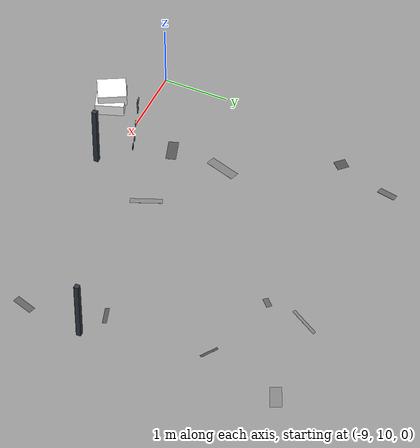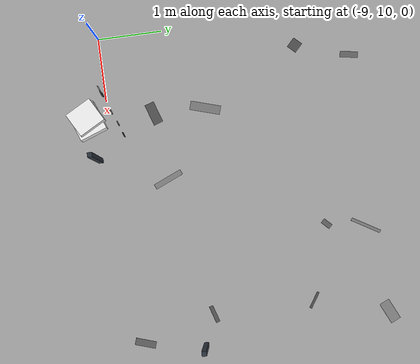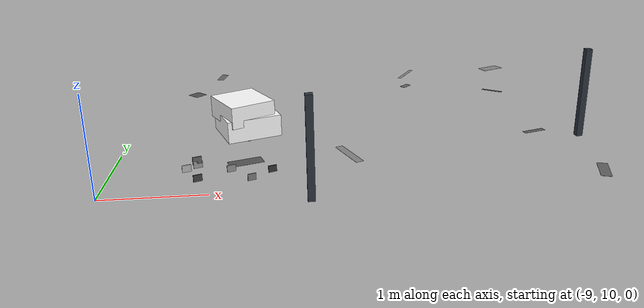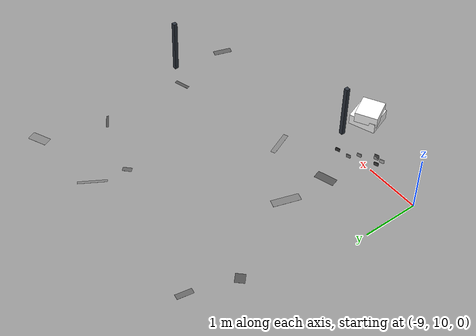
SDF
<sdf version="1.9">
 <world name="warehouse_irregular">
  <model name="concrete_patch_0">
   <static>true</static>
   <pose>-4.115097575578446 13.957961733746362 0.0006 0 0 -2.7177806267711726</pose>
   <link name="body">
    <visual name="surface">
     <geometry><box><size>0.3410374711611035 0.16528034942773398 0.001</size></box></geometry>
     <material>
      <ambient>0.5230129829485876 0.5230129829485876 0.5230129829485876 1</ambient>
      <diffuse>0.5230129829485876 0.5230129829485876 0.5230129829485876 1</diffuse>
     </material>
    </visual>
   </link>
  </model>
  <model name="concrete_patch_6">
   <static>true</static>
   <pose>-7.708475909224955 10.715653862771592 0.0006 0 0 0.3110669065295735</pose>
   <link name="body">
    <visual name="surface">
     <geometry><box><size>0.35138165184556985 0.1514570237064501 0.001</size></box></geometry>
     <material>
      <ambient>0.3307612838558225 0.3307612838558225 0.3307612838558225 1</ambient>
      <diffuse>0.3307612838558225 0.3307612838558225 0.3307612838558225 1</diffuse>
     </material>
    </visual>
   </link>
  </model>
  <model name="concrete_patch_14">
   <static>true</static>
   <pose>-8.217430454813963 13.914036345789711 0.0006 0 0 1.3866274076039886</pose>
   <link name="body">
    <visual name="surface">
     <geometry><box><size>0.28196065937643805 0.09643512882500528 0.001</size></box></geometry>
     <material>
      <ambient>0.4007991366429039 0.4007991366429039 0.4007991366429039 1</ambient>
      <diffuse>0.4007991366429039 0.4007991366429039 0.4007991366429039 1</diffuse>
     </material>
    </visual>
   </link>
  </model>
  <model name="concrete_patch_68">
   <static>true</static>
   <pose>-4.153584049041132 10.114149254909826 0.0006 0 0 -1.8919738790545682</pose>
   <link name="body">
    <visual name="surface">
     <geometry><box><size>0.3245111337251562 0.10807116053508793 0.001</size></box></geometry>
     <material>
      <ambient>0.38049309773484763 0.38049309773484763 0.38049309773484763 1</ambient>
      <diffuse>0.38049309773484763 0.38049309773484763 0.38049309773484763 1</diffuse>
     </material>
    </visual>
   </link>
  </model>
  <model name="concrete_patch_77">
   <static>true</static>
   <pose>-4.448641377197465 12.81350816669357 0.0006 0 0 2.551776843549339</pose>
   <link name="body">
    <visual name="surface">
     <geometry><box><size>0.27447990784818893 0.039546712375569865 0.001</size></box></geometry>
     <material>
      <ambient>0.3039209267187395 0.3039209267187395 0.3039209267187395 1</ambient>
      <diffuse>0.3039209267187395 0.3039209267187395 0.3039209267187395 1</diffuse>
     </material>
    </visual>
   </link>
  </model>
  <model name="concrete_patch_87">
   <static>true</static>
   <pose>-4.448880955811871 11.23657882567057 0.0006 0 0 -2.842829749918744</pose>
   <link name="body">
    <visual name="surface">
     <geometry><box><size>0.27339606438976305 0.06275885075314111 0.001</size></box></geometry>
     <material>
      <ambient>0.3374122956000345 0.3374122956000345 0.3374122956000345 1</ambient>
      <diffuse>0.3374122956000345 0.3374122956000345 0.3374122956000345 1</diffuse>
     </material>
    </visual>
   </link>
  </model>
  <model name="concrete_patch_126">
   <static>true</static>
   <pose>-7.68730106359679 11.535405056530152 0.0006 0 0 -1.876260584281576</pose>
   <link name="body">
    <visual name="surface">
     <geometry><box><size>0.48209028799979964 0.14102443216071728 0.001</size></box></geometry>
     <material>
      <ambient>0.4964284691885087 0.4964284691885087 0.4964284691885087 1</ambient>
      <diffuse>0.4964284691885087 0.4964284691885087 0.4964284691885087 1</diffuse>
     </material>
    </visual>
   </link>
  </model>
  <model name="concrete_patch_153">
   <static>true</static>
   <pose>-6.638958729469159 10.805069214607634 0.0006 0 0 1.9680952920803225</pose>
   <link name="body">
    <visual name="surface">
     <geometry><box><size>0.4721629196969227 0.08582049458711147 0.001</size></box></geometry>
     <material>
      <ambient>0.5192954066554428 0.5192954066554428 0.5192954066554428 1</ambient>
      <diffuse>0.5192954066554428 0.5192954066554428 0.5192954066554428 1</diffuse>
     </material>
    </visual>
   </link>
  </model>
  <model name="concrete_patch_182">
   <static>true</static>
   <pose>-5.601177253040191 13.174989440074366 0.0006 0 0 -0.7989810650234732</pose>
   <link name="body">
    <visual name="surface">
     <geometry><box><size>0.08337411798365028 0.15873717421636613 0.001</size></box></geometry>
     <material>
      <ambient>0.38814214497131805 0.38814214497131805 0.38814214497131805 1</ambient>
      <diffuse>0.38814214497131805 0.38814214497131805 0.38814214497131805 1</diffuse>
     </material>
    </visual>
   </link>
  </model>
  <model name="concrete_patch_226">
   <static>true</static>
   <pose>-8.483565354422321 13.081485179781495 0.0006 0 0 -2.3427900300398035</pose>
   <link name="body">
    <visual name="surface">
     <geometry><box><size>0.16499660339897054 0.1751732976007527 0.001</size></box></geometry>
     <material>
      <ambient>0.31791974241399307 0.31791974241399307 0.31791974241399307 1</ambient>
      <diffuse>0.31791974241399307 0.31791974241399307 0.31791974241399307 1</diffuse>
     </material>
    </visual>
   </link>
  </model>
  <model name="concrete_patch_228">
   <static>true</static>
   <pose>-5.4921796140992445 13.781172579099643 0.0006 0 0 -2.114671507267449</pose>
   <link name="body">
    <visual name="surface">
     <geometry><box><size>0.49080218226118993 0.0477388046494458 0.001</size></box></geometry>
     <material>
      <ambient>0.5038171476694904 0.5038171476694904 0.5038171476694904 1</ambient>
      <diffuse>0.5038171476694904 0.5038171476694904 0.5038171476694904 1</diffuse>
     </material>
    </visual>
   </link>
  </model>
  <model name="post_12_-1">
   <static>true</static>
   <pose>-4.00038933300278 11.052064423390817 0.5 0 0 0</pose>
   <link name="body">
    <visual name="surface">
     <geometry><box><size>0.07 0.07 1</size></box></geometry>
     <material><ambient>0.18 0.21 0.25 1</ambient><diffuse>0.18 0.21 0.25 1</diffuse></material>
    </visual>
    <collision name="solid"><geometry><box><size>0.07 0.07 1</size></box></geometry></collision>
   </link>
  </model>
  <model name="panel_14_0_1">
   <static>true</static>
   <pose>-7.423225110668605 10.216671015714741 0.13778769917979314 0 0 0.34832358455584234</pose>
   <link name="body">
    <visual name="surface">
     <geometry><box><size>0.08 0.012 0.065</size></box></geometry>
     <material>
      <ambient>0.21250328706474714 0.21250328706474714 0.21250328706474714 1</ambient>
      <diffuse>0.21250328706474714 0.21250328706474714 0.21250328706474714 1</diffuse>
     </material>
    </visual>
   </link>
  </model>
  <model name="panel_14_1_1">
   <static>true</static>
   <pose>-8.082960322882613 9.97710145773893 0.18636677065261156 0 0 0.34832358455584234</pose>
   <link name="body">
    <visual name="surface">
     <geometry><box><size>0.08 0.012 0.065</size></box></geometry>
     <material>
      <ambient>0.25824302542927496 0.25824302542927496 0.25824302542927496 1</ambient>
      <diffuse>0.25824302542927496 0.25824302542927496 0.25824302542927496 1</diffuse>
     </material>
    </visual>
   </link>
  </model>
  <model name="panel_14_2_1">
   <static>true</static>
   <pose>-7.791111784887891 10.083080377688715 0.22017733649737864 0 0 0.34832358455584234</pose>
   <link name="body">
    <visual name="surface">
     <geometry><box><size>0.08 0.012 0.065</size></box></geometry>
     <material>
      <ambient>0.5698525434834492 0.5698525434834492 0.5698525434834492 1</ambient>
      <diffuse>0.5698525434834492 0.5698525434834492 0.5698525434834492 1</diffuse>
     </material>
    </visual>
   </link>
  </model>
  <model name="panel_14_3_1">
   <static>true</static>
   <pose>-8.074694935155188 9.980102866861408 0.3584209300030651 0 0 0.34832358455584234</pose>
   <link name="body">
    <visual name="surface">
     <geometry><box><size>0.08 0.012 0.065</size></box></geometry>
     <material>
      <ambient>0.3783610065023465 0.3783610065023465 0.3783610065023465 1</ambient>
      <diffuse>0.3783610065023465 0.3783610065023465 0.3783610065023465 1</diffuse>
     </material>
    </visual>
   </link>
  </model>
  <model name="panel_14_4_1">
   <static>true</static>
   <pose>-8.069942123195936 9.981828754822425 0.3177485477351589 0 0 0.34832358455584234</pose>
   <link name="body">
    <visual name="surface">
     <geometry><box><size>0.08 0.012 0.065</size></box></geometry>
     <material>
      <ambient>0.6056202072075546 0.6056202072075546 0.6056202072075546 1</ambient>
      <diffuse>0.6056202072075546 0.6056202072075546 0.6056202072075546 1</diffuse>
     </material>
    </visual>
   </link>
  </model>
  <model name="panel_14_5_1">
   <static>true</static>
   <pose>-8.166363489582187 9.946815277146955 0.2980846644126853 0 0 0.34832358455584234</pose>
   <link name="body">
    <visual name="surface">
     <geometry><box><size>0.08 0.012 0.065</size></box></geometry>
     <material>
      <ambient>0.7146291229278463 0.7146291229278463 0.7146291229278463 1</ambient>
      <diffuse>0.7146291229278463 0.7146291229278463 0.7146291229278463 1</diffuse>
     </material>
    </visual>
   </link>
  </model>
  <model name="panel_14_6_1">
   <static>true</static>
   <pose>-7.615792156348961 10.146744170580112 0.09456720460002738 0 0 0.34832358455584234</pose>
   <link name="body">
    <visual name="surface">
     <geometry><box><size>0.08 0.012 0.065</size></box></geometry>
     <material>
      <ambient>0.4842591985430357 0.4842591985430357 0.4842591985430357 1</ambient>
      <diffuse>0.4842591985430357 0.4842591985430357 0.4842591985430357 1</diffuse>
     </material>
    </visual>
   </link>
  </model>
  <model name="carton_14_0">
   <static>true</static>
   <pose>-7.595820211828722 9.793538022808827 0.7722149837656463 0 0 0.34832358455584234</pose>
   <link name="body">
    <visual name="surface">
     <geometry><box><size>0.45 0.42 0.18</size></box></geometry>
     <material>
      <ambient>1 1 1 1</ambient>
      <diffuse>1 1 1 1</diffuse>
      <pbr>
       <metal>
        <albedo_map>model://feature_warehouse_materials/textures/storage_14.png</albedo_map>
        <roughness>.9</roughness>
        <metalness>0</metalness>
       </metal>
      </pbr>
     </material>
    </visual>
    <collision name="solid"><geometry><box><size>0.45 0.42 0.18</size></box></geometry></collision>
   </link>
  </model>
  <model name="carton_14_1">
   <static>true</static>
   <pose>-7.629852163382497 9.793538022808827 0.8922149837656463 0 0 0.49832358455584236</pose>
   <link name="body">
    <visual name="surface">
     <geometry><box><size>0.38 0.42 0.18</size></box></geometry>
     <material>
      <ambient>1 1 1 1</ambient>
      <diffuse>1 1 1 1</diffuse>
      <pbr>
       <metal>
        <albedo_map>model://feature_warehouse_materials/textures/storage_14.png</albedo_map>
        <roughness>.9</roughness>
        <metalness>0</metalness>
       </metal>
      </pbr>
     </material>
    </visual>
    <collision name="solid"><geometry><box><size>0.38 0.42 0.18</size></box></geometry></collision>
   </link>
  </model>
  <model name="post_14_1">
   <static>true</static>
   <pose>-7.074880947398209 9.793538022808827 0.5 0 0 0</pose>
   <link name="body">
    <visual name="surface">
     <geometry><box><size>0.07 0.07 1</size></box></geometry>
     <material><ambient>0.18 0.21 0.25 1</ambient><diffuse>0.18 0.21 0.25 1</diffuse></material>
    </visual>
    <collision name="solid"><geometry><box><size>0.07 0.07 1</size></box></geometry></collision>
   </link>
  </model>
 </world>
</sdf>
